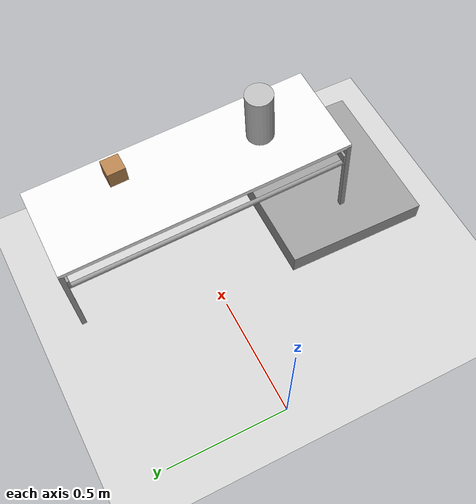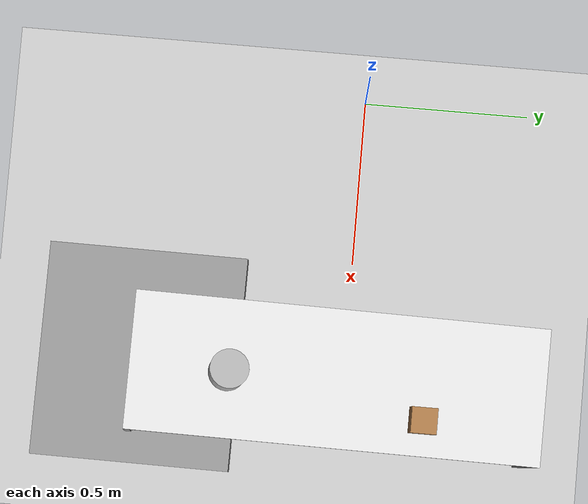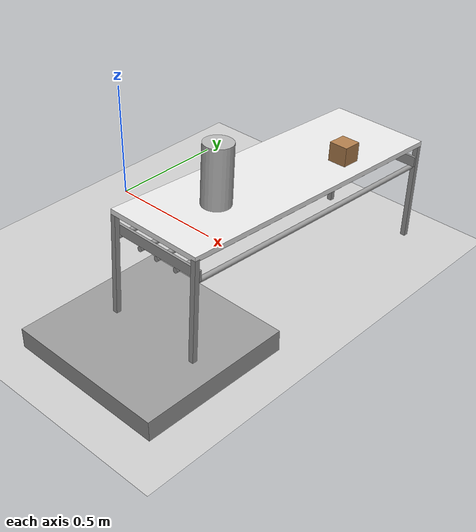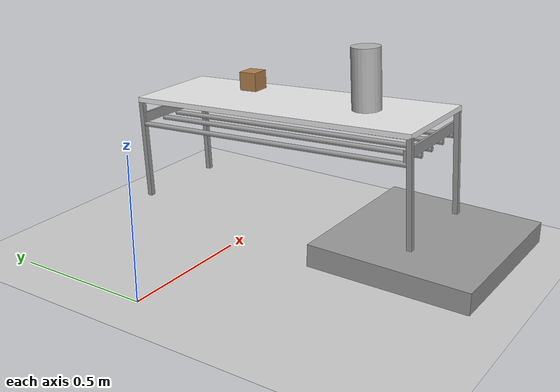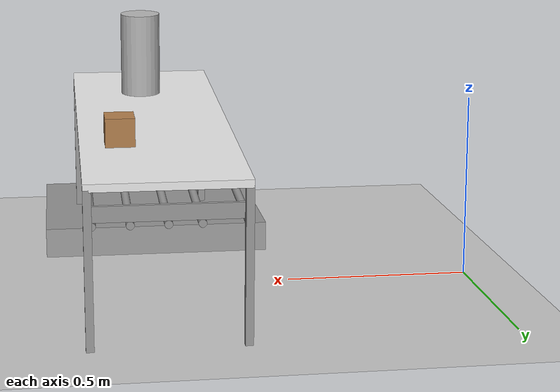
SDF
<sdf version="1.7">
 <world name="default">
  <physics name="default_physics" default="0" type="ode">
   <max_step_size>0.001</max_step_size>
   <real_time_factor>1</real_time_factor>
   <real_time_update_rate>1000</real_time_update_rate>
  </physics>
  <light name="sun" type="directional">
   <pose>0 0 10 0 -0 0</pose>
   <diffuse>0.8 0.8 0.8 1</diffuse>
   <specular>0.2 0.2 0.2 1</specular>
   <attenuation><range>1000</range><constant>1</constant><linear>0</linear><quadratic>0</quadratic></attenuation>
   <direction>-0.5 0.1 -0.9</direction>
   <spot><inner_angle>0</inner_angle><outer_angle>0</outer_angle><falloff>0</falloff></spot>
  </light>
  <model name="ground_plane">
   <static>1</static>
   <link name="link">
    <collision name="collision">
     <geometry><plane><normal>0 0 1</normal><size>100 100</size></plane></geometry>
     <surface>
      <contact><collide_bitmask>65535</collide_bitmask></contact>
      <friction><ode><mu>100</mu><mu2>50</mu2></ode></friction>
     </surface>
    </collision>
    <visual name="visual">
     <cast_shadows>0</cast_shadows>
     <geometry><plane><normal>0 0 1</normal><size>100 100</size></plane></geometry>
     <material>
      <script><uri>file://media/materials/scripts/gazebo.material</uri><name>Gazebo/Grey</name></script>
     </material>
    </visual>
   </link>
  </model>
  <gravity>0 0 -9.8</gravity>
  <magnetic_field>6e-06 2.3e-05 -4.2e-05</magnetic_field>
  <atmosphere type="adiabatic"/>
  <scene><ambient>0.4 0.4 0.4 1</ambient><background>0.7 0.7 0.7 1</background><shadows>1</shadows></scene>
  <spherical_coordinates>
   <surface_model>EARTH_WGS84</surface_model>
   <latitude_deg>0</latitude_deg>
   <longitude_deg>0</longitude_deg>
   <elevation>0</elevation>
   <heading_deg>0</heading_deg>
  </spherical_coordinates>
  <model name="wrc_long_table">
   <static>1</static>
   <link name="link">
    <inertial><mass>1</mass></inertial>
    <collision name="top">
     <pose>0 0 0.39 0 -0 0</pose>
     <geometry><box><size>1.2 0.4 0.02</size></box></geometry>
    </collision>
    <visual name="top_v">
     <pose>0 0 0.39 0 -0 0</pose>
     <geometry><box><size>1.2 0.4 0.02</size></box></geometry>
     <material>
      <script><uri>file://media/materials/scripts/gazebo.material</uri><name>Gazebo/White</name></script>
     </material>
    </visual>
    <collision name="leg1">
     <pose>0.59 0.19 0.185 0 -0 0</pose>
     <geometry><box><size>0.02 0.02 0.4</size></box></geometry>
    </collision>
    <visual name="leg1_v">
     <pose>0.59 0.19 0.185 0 -0 0</pose>
     <geometry><box><size>0.02 0.02 0.4</size></box></geometry>
     <material>
      <script><uri>file://media/materials/scripts/gazebo.material</uri><name>Gazebo/Gray</name></script>
     </material>
    </visual>
    <collision name="leg2">
     <pose>-0.59 0.19 0.185 0 -0 0</pose>
     <geometry><box><size>0.02 0.02 0.4</size></box></geometry>
    </collision>
    <visual name="leg2_v">
     <pose>-0.59 0.19 0.185 0 -0 0</pose>
     <geometry><box><size>0.02 0.02 0.4</size></box></geometry>
     <material>
      <script><uri>file://media/materials/scripts/gazebo.material</uri><name>Gazebo/Gray</name></script>
     </material>
    </visual>
    <collision name="leg3">
     <pose>0.59 -0.19 0.185 0 -0 0</pose>
     <geometry><box><size>0.02 0.02 0.4</size></box></geometry>
    </collision>
    <visual name="leg3_v">
     <pose>0.59 -0.19 0.185 0 -0 0</pose>
     <geometry><box><size>0.02 0.02 0.4</size></box></geometry>
     <material>
      <script><uri>file://media/materials/scripts/gazebo.material</uri><name>Gazebo/Gray</name></script>
     </material>
    </visual>
    <collision name="leg4">
     <pose>-0.59 -0.19 0.185 0 -0 0</pose>
     <geometry><box><size>0.02 0.02 0.4</size></box></geometry>
    </collision>
    <visual name="leg4_v">
     <pose>-0.59 -0.19 0.185 0 -0 0</pose>
     <geometry><box><size>0.02 0.02 0.4</size></box></geometry>
     <material>
      <script><uri>file://media/materials/scripts/gazebo.material</uri><name>Gazebo/Gray</name></script>
     </material>
    </visual>
    <collision name="side_panel1">
     <pose>0.575 0 0.32 0 -0 0</pose>
     <geometry><box><size>0.01 0.4 0.04</size></box></geometry>
    </collision>
    <visual name="side_panel1_v">
     <pose>0.575 0 0.32 0 -0 0</pose>
     <geometry><box><size>0.01 0.4 0.04</size></box></geometry>
     <material>
      <script><uri>file://media/materials/scripts/gazebo.material</uri><name>Gazebo/Gray</name></script>
     </material>
    </visual>
    <collision name="side_panel2">
     <pose>-0.575 0 0.32 0 -0 0</pose>
     <geometry><box><size>0.01 0.4 0.04</size></box></geometry>
    </collision>
    <visual name="side_panel2_v">
     <pose>-0.575 0 0.32 0 -0 0</pose>
     <geometry><box><size>0.01 0.4 0.04</size></box></geometry>
     <material>
      <script><uri>file://media/materials/scripts/gazebo.material</uri><name>Gazebo/Gray</name></script>
     </material>
    </visual>
    <collision name="bar1">
     <pose>0 0.2 0.29 0 1.57 0</pose>
     <geometry><cylinder><radius>0.01</radius><length>1.16</length></cylinder></geometry>
    </collision>
    <visual name="bar1_v">
     <pose>0 0.19 0.29 0 1.57 0</pose>
     <geometry><cylinder><radius>0.01</radius><length>1.16</length></cylinder></geometry>
     <material>
      <script><uri>file://media/materials/scripts/gazebo.material</uri><name>Gazebo/Gray</name></script>
     </material>
    </visual>
    <collision name="bar2">
     <pose>0 0.08 0.29 0 1.57 0</pose>
     <geometry><cylinder><radius>0.01</radius><length>1.16</length></cylinder></geometry>
    </collision>
    <visual name="bar2_v">
     <pose>0 0.08 0.29 0 1.57 0</pose>
     <geometry><cylinder><radius>0.01</radius><length>1.16</length></cylinder></geometry>
     <material>
      <script><uri>file://media/materials/scripts/gazebo.material</uri><name>Gazebo/Gray</name></script>
     </material>
    </visual>
    <collision name="bar3">
     <pose>0 0 0.29 0 1.57 0</pose>
     <geometry><cylinder><radius>0.01</radius><length>1.16</length></cylinder></geometry>
    </collision>
    <visual name="bar3_v">
     <pose>0 0 0.29 0 1.57 0</pose>
     <geometry><cylinder><radius>0.01</radius><length>1.16</length></cylinder></geometry>
     <material>
      <script><uri>file://media/materials/scripts/gazebo.material</uri><name>Gazebo/Gray</name></script>
     </material>
    </visual>
    <collision name="bar4">
     <pose>0 -0.08 0.29 0 1.57 0</pose>
     <geometry><cylinder><radius>0.01</radius><length>1.16</length></cylinder></geometry>
    </collision>
    <visual name="bar4_v">
     <pose>0 -0.09 0.29 0 1.57 0</pose>
     <geometry><cylinder><radius>0.01</radius><length>1.16</length></cylinder></geometry>
     <material>
      <script><uri>file://media/materials/scripts/gazebo.material</uri><name>Gazebo/Gray</name></script>
     </material>
    </visual>
    <collision name="bar5">
     <pose>0 -0.18 0.29 0 1.57 0</pose>
     <geometry><cylinder><radius>0.01</radius><length>1.16</length></cylinder></geometry>
    </collision>
    <visual name="bar5_v">
     <pose>0 -0.18 0.29 0 1.57 0</pose>
     <geometry><cylinder><radius>0.01</radius><length>1.16</length></cylinder></geometry>
     <material>
      <script><uri>file://media/materials/scripts/gazebo.material</uri><name>Gazebo/Gray</name></script>
     </material>
    </visual>
   </link>
   <pose>0.871421 -0.043233 0.060821 0 0.05843 1.56133</pose>
  </model>
  <light name="user_spot_light_0" type="spot">
   <pose>0.988981 0.326539 1 0 -0 0</pose>
   <diffuse>0.9 0.9 0.9 1</diffuse>
   <specular>0.1 0.1 0.1 1</specular>
   <direction>0 0 -1</direction>
   <attenuation>
    <range>200</range>
    <constant>0.2</constant>
    <linear>0.2</linear>
    <quadratic>0.001</quadratic>
   </attenuation>
   <cast_shadows>0</cast_shadows>
   <spot><inner_angle>0.6</inner_angle><outer_angle>1</outer_angle><falloff>1</falloff></spot>
  </light>
  <audio><device>default</device></audio>
  <model name="unit_box">
   <pose>0.836635 -0.621894 0.030973 0.00826 -3e-06 -0.009367</pose>
   <link name="link">
    <inertial>
     <mass>1</mass>
     <inertia>
      <ixx>0.166667</ixx>
      <ixy>0</ixy>
      <ixz>0</ixz>
      <iyy>0.166667</iyy>
      <iyz>0</iyz>
      <izz>0.166667</izz>
     </inertia>
    </inertial>
    <collision name="collision"><geometry><box><size>0.646849 0.602268 0.0975</size></box></geometry></collision>
    <visual name="visual">
     <geometry><box><size>0.646849 0.602268 0.0975</size></box></geometry>
     <material>
      <script><name>Gazebo/Grey</name><uri>file://media/materials/scripts/gazebo.material</uri></script>
     </material>
    </visual>
   </link>
  </model>
  <model name="beer">
   <link name="link">
    <pose>0 0 0.115 0 -0 0</pose>
    <inertial>
     <mass>0.39</mass>
     <inertia><ixx>0.00058</ixx><ixy>0</ixy><ixz>0</ixz><iyy>0.00058</iyy><iyz>0</iyz><izz>0.00019</izz></inertia>
    </inertial>
    <collision name="collision">
     <geometry><cylinder><radius>0.055</radius><length>0.23</length></cylinder></geometry>
    </collision>
    <visual name="visual">
     <geometry><cylinder><radius>0.055</radius><length>0.23</length></cylinder></geometry>
     <material>
      <script>
       <uri>model://beer/materials/scripts</uri>
       <uri>model://beer/materials/textures</uri>
       <name>Beer/Diffuse</name>
      </script>
     </material>
    </visual>
   </link>
   <pose>0.879339 -0.338331 0.478753 -0.058412 -0.000159 -0.012181</pose>
  </model>
  <model name="wood_cube_7_5cm">
   <link name="link">
    <pose>0 0 0.0375 0 -0 0</pose>
    <inertial>
     <mass>0.2249</mass>
     <inertia>
      <ixx>0.000210844</ixx>
      <ixy>0</ixy>
      <ixz>0</ixz>
      <iyy>0.000210844</iyy>
      <iyz>0</iyz>
      <izz>0.000210844</izz>
     </inertia>
    </inertial>
    <collision name="collision">
     <geometry><box><size>0.075 0.075 0.075</size></box></geometry>
     <surface>
      <contact>
       <poissons_ratio>0.347</poissons_ratio>
       <elastic_modulus>8.8e+09</elastic_modulus>
       <ode><kp>100000</kp><kd>100</kd><max_vel>100</max_vel><min_depth>0.001</min_depth></ode>
      </contact>
      <friction>
       <torsional>
        <coefficient>1</coefficient>
        <use_patch_radius>0</use_patch_radius>
        <surface_radius>0.01</surface_radius>
       </torsional>
      </friction>
     </surface>
    </collision>
    <visual name="visual">
     <geometry><box><size>0.075 0.075 0.075</size></box></geometry>
     <material>
      <script><uri>file://media/materials/scripts/gazebo.material</uri><name>Gazebo/Wood</name></script>
     </material>
    </visual>
   </link>
   <pose>0.971796 0.227384 0.444613 -0.058436 0.000552 -3.8e-05</pose>
  </model>
 </world>
</sdf>
